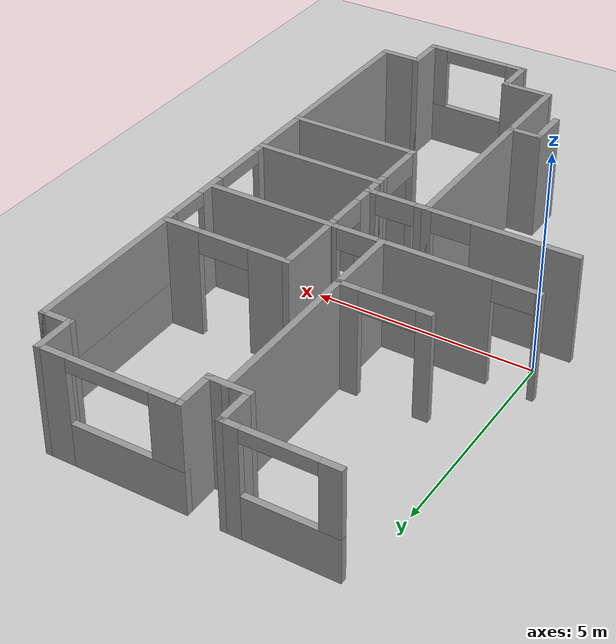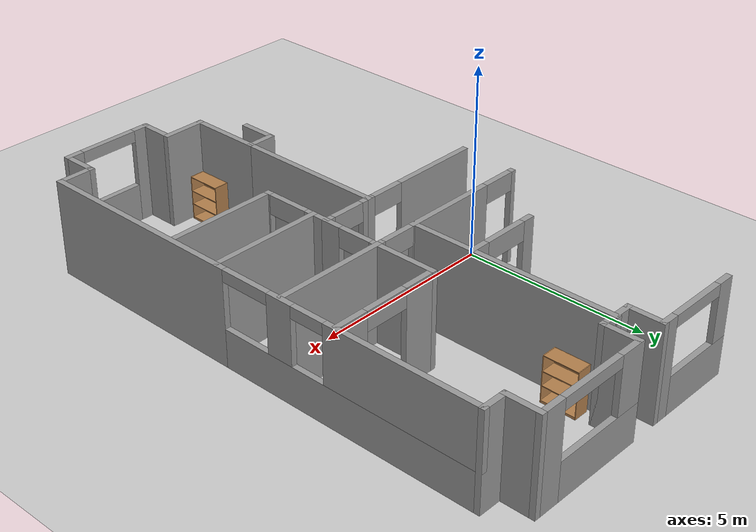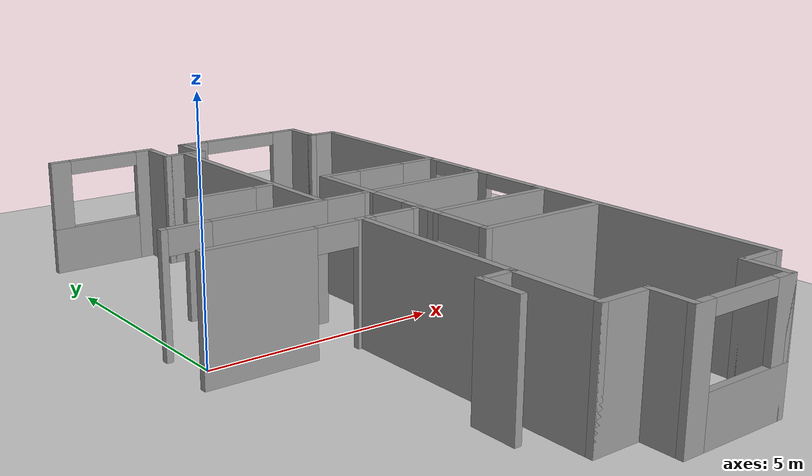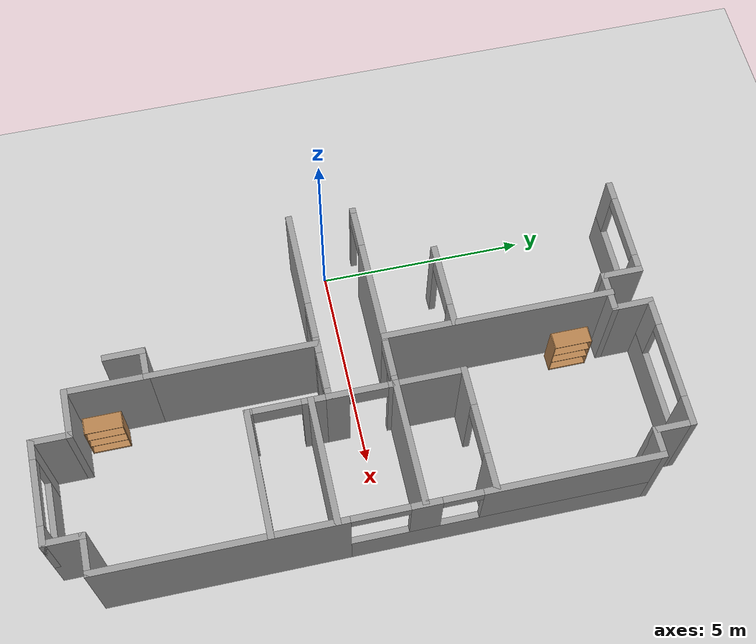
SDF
<sdf version="1.7">
 <world name="default">
  <model name="ground_plane">
   <static>1</static>
   <link name="link">
    <collision name="collision">
     <geometry><plane><normal>0 0 1</normal><size>100 100</size></plane></geometry>
     <surface>
      <contact><collide_bitmask>65535</collide_bitmask></contact>
      <friction><ode><mu>100</mu><mu2>50</mu2></ode></friction>
     </surface>
    </collision>
    <visual name="visual">
     <cast_shadows>0</cast_shadows>
     <geometry><plane><normal>0 0 1</normal><size>100 100</size></plane></geometry>
     <material>
      <script><uri>file://media/materials/scripts/gazebo.material</uri><name>Gazebo/Grey</name></script>
     </material>
    </visual>
   </link>
  </model>
  <model name="house_0818_yt160_1">
   <pose>0.015299 -0.157746 0 0 -0 0</pose>
   <link name="Wall_10">
    <collision name="Wall_10_Collision">
     <geometry><box><size>1.20003 0.15 2.5</size></box></geometry>
     <pose>0 0 1.25 0 -0 0</pose>
    </collision>
    <visual name="Wall_10_Visual">
     <pose>0 0 1.25 0 -0 0</pose>
     <geometry><box><size>1.20003 0.15 2.5</size></box></geometry>
     <material>
      <script><uri>file://media/materials/scripts/gazebo.material</uri><name>Gazebo/Grey</name></script>
      <ambient>1 1 1 1</ambient>
     </material>
     <meta><layer>0</layer></meta>
    </visual>
    <pose>3.42499 -6.29979 0 0 -0 0</pose>
   </link>
   <link name="Wall_11">
    <collision name="Wall_11_Collision">
     <geometry><box><size>1 0.15 2.5</size></box></geometry>
     <pose>0 0 1.25 0 -0 0</pose>
    </collision>
    <visual name="Wall_11_Visual">
     <pose>0 0 1.25 0 -0 0</pose>
     <geometry><box><size>1 0.15 2.5</size></box></geometry>
     <material>
      <script><uri>file://media/materials/scripts/gazebo.material</uri><name>Gazebo/Grey</name></script>
      <ambient>1 1 1 1</ambient>
     </material>
     <meta><layer>0</layer></meta>
    </visual>
    <pose>3.95 -6.7249 0 0 -0 -1.57076</pose>
   </link>
   <link name="Wall_12">
    <pose>5.12501 -7.15 0 0 -0 0</pose>
    <visual name="Wall_12_Visual_0">
     <pose>-1.00927 0 1.25 0 -0 0</pose>
     <geometry><box><size>0.481456 0.15 2.5</size></box></geometry>
     <material>
      <script><uri>file://media/materials/scripts/gazebo.material</uri><name>Gazebo/Grey</name></script>
      <ambient>1 1 1 1</ambient>
     </material>
     <meta><layer>0</layer></meta>
    </visual>
    <collision name="Wall_12_Collision_0">
     <geometry><box><size>0.481456 0.15 2.5</size></box></geometry>
     <pose>-1.00927 0 1.25 0 -0 0</pose>
    </collision>
    <visual name="Wall_12_Visual_1">
     <pose>0.240728 0 0.5 0 -0 0</pose>
     <geometry><box><size>2.01854 0.15 1</size></box></geometry>
     <material>
      <script><uri>file://media/materials/scripts/gazebo.material</uri><name>Gazebo/Grey</name></script>
      <ambient>1 1 1 1</ambient>
     </material>
     <meta><layer>0</layer></meta>
    </visual>
    <collision name="Wall_12_Collision_1">
     <geometry><box><size>2.01854 0.15 1</size></box></geometry>
     <pose>0.240728 0 0.5 0 -0 0</pose>
    </collision>
    <visual name="Wall_12_Visual_2">
     <pose>1.01273 0 1.75 0 -0 0</pose>
     <geometry><box><size>0.474544 0.15 1.5</size></box></geometry>
     <material>
      <script><uri>file://media/materials/scripts/gazebo.material</uri><name>Gazebo/Grey</name></script>
      <ambient>1 1 1 1</ambient>
     </material>
     <meta><layer>0</layer></meta>
    </visual>
    <collision name="Wall_12_Collision_2">
     <geometry><box><size>0.474544 0.15 1.5</size></box></geometry>
     <pose>1.01273 0 1.75 0 -0 0</pose>
    </collision>
    <visual name="Wall_12_Visual_3">
     <pose>0.003456 0 2.35 0 -0 0</pose>
     <geometry><box><size>1.544 0.15 0.3</size></box></geometry>
     <material>
      <script><uri>file://media/materials/scripts/gazebo.material</uri><name>Gazebo/Grey</name></script>
      <ambient>1 1 1 1</ambient>
     </material>
     <meta><layer>0</layer></meta>
    </visual>
    <collision name="Wall_12_Collision_3">
     <geometry><box><size>1.544 0.15 0.3</size></box></geometry>
     <pose>0.003456 0 2.35 0 -0 0</pose>
    </collision>
   </link>
   <link name="Wall_13">
    <collision name="Wall_13_Collision">
     <geometry><box><size>1 0.15 2.5</size></box></geometry>
     <pose>0 0 1.25 0 -0 0</pose>
    </collision>
    <visual name="Wall_13_Visual">
     <pose>0 0 1.25 0 -0 0</pose>
     <geometry><box><size>1 0.15 2.5</size></box></geometry>
     <material>
      <script><uri>file://media/materials/scripts/gazebo.material</uri><name>Gazebo/Grey</name></script>
      <ambient>1 1 1 1</ambient>
     </material>
     <meta><layer>0</layer></meta>
    </visual>
    <pose>6.30001 -6.725 0 0 -0 1.5708</pose>
   </link>
   <link name="Wall_16">
    <collision name="Wall_16_Collision">
     <geometry><box><size>1 0.15 2.5</size></box></geometry>
     <pose>0 0 1.25 0 -0 0</pose>
    </collision>
    <visual name="Wall_16_Visual">
     <pose>0 0 1.25 0 -0 0</pose>
     <geometry><box><size>1 0.15 2.5</size></box></geometry>
     <material>
      <script><uri>file://media/materials/scripts/gazebo.material</uri><name>Gazebo/Grey</name></script>
      <ambient>1 1 1 1</ambient>
     </material>
     <meta><layer>0</layer></meta>
    </visual>
    <pose>6.72501 -6.3 0 0 -0 0</pose>
   </link>
   <link name="Wall_17">
    <pose>7.15001 -0 0 0 -0 1.5708</pose>
    <visual name="Wall_17_Visual_0">
     <pose>-3.53052 0 1.25 0 -0 0</pose>
     <geometry><box><size>5.68897 0.15 2.5</size></box></geometry>
     <material>
      <script><uri>file://media/materials/scripts/gazebo.material</uri><name>Gazebo/Grey</name></script>
      <ambient>1 1 1 1</ambient>
     </material>
     <meta><layer>0</layer></meta>
    </visual>
    <collision name="Wall_17_Collision_0">
     <geometry><box><size>5.68897 0.15 2.5</size></box></geometry>
     <pose>-3.53052 0 1.25 0 -0 0</pose>
    </collision>
    <visual name="Wall_17_Visual_1">
     <pose>2.84448 0 0.5 0 -0 0</pose>
     <geometry><box><size>7.06103 0.15 1</size></box></geometry>
     <material>
      <script><uri>file://media/materials/scripts/gazebo.material</uri><name>Gazebo/Grey</name></script>
      <ambient>1 1 1 1</ambient>
     </material>
     <meta><layer>0</layer></meta>
    </visual>
    <collision name="Wall_17_Collision_1">
     <geometry><box><size>7.06103 0.15 1</size></box></geometry>
     <pose>2.84448 0 0.5 0 -0 0</pose>
    </collision>
    <visual name="Wall_17_Visual_2">
     <pose>0.990952 0 1.75 0 -0 0</pose>
     <geometry><box><size>0.703966 0.15 1.5</size></box></geometry>
     <material>
      <script><uri>file://media/materials/scripts/gazebo.material</uri><name>Gazebo/Grey</name></script>
      <ambient>1 1 1 1</ambient>
     </material>
     <meta><layer>0</layer></meta>
    </visual>
    <collision name="Wall_17_Collision_2">
     <geometry><box><size>0.703966 0.15 1.5</size></box></geometry>
     <pose>0.990952 0 1.75 0 -0 0</pose>
    </collision>
    <visual name="Wall_17_Visual_3">
     <pose>4.31147 0 1.75 0 -0 0</pose>
     <geometry><box><size>4.12706 0.15 1.5</size></box></geometry>
     <material>
      <script><uri>file://media/materials/scripts/gazebo.material</uri><name>Gazebo/Grey</name></script>
      <ambient>1 1 1 1</ambient>
     </material>
     <meta><layer>0</layer></meta>
    </visual>
    <collision name="Wall_17_Collision_3">
     <geometry><box><size>4.12706 0.15 1.5</size></box></geometry>
     <pose>4.31147 0 1.75 0 -0 0</pose>
    </collision>
    <visual name="Wall_17_Visual_4">
     <pose>-0.023532 0 2.35 0 -0 0</pose>
     <geometry><box><size>1.325 0.15 0.3</size></box></geometry>
     <material>
      <script><uri>file://media/materials/scripts/gazebo.material</uri><name>Gazebo/Grey</name></script>
      <ambient>1 1 1 1</ambient>
     </material>
     <meta><layer>0</layer></meta>
    </visual>
    <collision name="Wall_17_Collision_4">
     <geometry><box><size>1.325 0.15 0.3</size></box></geometry>
     <pose>-0.023532 0 2.35 0 -0 0</pose>
    </collision>
    <visual name="Wall_17_Visual_5">
     <pose>1.79543 0 2.35 0 -0 0</pose>
     <geometry><box><size>0.905 0.15 0.3</size></box></geometry>
     <material>
      <script><uri>file://media/materials/scripts/gazebo.material</uri><name>Gazebo/Grey</name></script>
      <ambient>1 1 1 1</ambient>
     </material>
     <meta><layer>0</layer></meta>
    </visual>
    <collision name="Wall_17_Collision_5">
     <geometry><box><size>0.905 0.15 0.3</size></box></geometry>
     <pose>1.79543 0 2.35 0 -0 0</pose>
    </collision>
   </link>
   <link name="Wall_18">
    <collision name="Wall_18_Collision">
     <geometry><box><size>0.75 0.15 2.5</size></box></geometry>
     <pose>0 0 1.25 0 -0 0</pose>
    </collision>
    <visual name="Wall_18_Visual">
     <pose>0 0 1.25 0 -0 0</pose>
     <geometry><box><size>0.75 0.15 2.5</size></box></geometry>
     <material>
      <script><uri>file://media/materials/scripts/gazebo.material</uri><name>Gazebo/Grey</name></script>
      <ambient>1 1 1 1</ambient>
     </material>
     <meta><layer>0</layer></meta>
    </visual>
    <pose>6.85001 6.3 0 0 -0 3.14159</pose>
   </link>
   <link name="Wall_20">
    <collision name="Wall_20_Collision">
     <geometry><box><size>1 0.15 2.5</size></box></geometry>
     <pose>0 0 1.25 0 -0 0</pose>
    </collision>
    <visual name="Wall_20_Visual">
     <pose>0 0 1.25 0 -0 0</pose>
     <geometry><box><size>1 0.15 2.5</size></box></geometry>
     <material>
      <script><uri>file://media/materials/scripts/gazebo.material</uri><name>Gazebo/Grey</name></script>
      <ambient>1 1 1 1</ambient>
     </material>
     <meta><layer>0</layer></meta>
    </visual>
    <pose>6.55001 6.725 0 0 -0 1.5708</pose>
   </link>
   <link name="Wall_21">
    <pose>5.00001 7.15 0 0 -0 3.14159</pose>
    <visual name="Wall_21_Visual_0">
     <pose>-1.26954 0 1.25 0 -0 0</pose>
     <geometry><box><size>0.710929 0.15 2.5</size></box></geometry>
     <material>
      <script><uri>file://media/materials/scripts/gazebo.material</uri><name>Gazebo/Grey</name></script>
      <ambient>1 1 1 1</ambient>
     </material>
     <meta><layer>0</layer></meta>
    </visual>
    <collision name="Wall_21_Collision_0">
     <geometry><box><size>0.710929 0.15 2.5</size></box></geometry>
     <pose>-1.26954 0 1.25 0 -0 0</pose>
    </collision>
    <visual name="Wall_21_Visual_1">
     <pose>0.355464 0 0.5 0 -0 0</pose>
     <geometry><box><size>2.53907 0.15 1</size></box></geometry>
     <material>
      <script><uri>file://media/materials/scripts/gazebo.material</uri><name>Gazebo/Grey</name></script>
      <ambient>1 1 1 1</ambient>
     </material>
     <meta><layer>0</layer></meta>
    </visual>
    <collision name="Wall_21_Collision_1">
     <geometry><box><size>2.53907 0.15 1</size></box></geometry>
     <pose>0.355464 0 0.5 0 -0 0</pose>
    </collision>
    <visual name="Wall_21_Visual_2">
     <pose>1.27146 0 1.75 0 -0 0</pose>
     <geometry><box><size>0.707071 0.15 1.5</size></box></geometry>
     <material>
      <script><uri>file://media/materials/scripts/gazebo.material</uri><name>Gazebo/Grey</name></script>
      <ambient>1 1 1 1</ambient>
     </material>
     <meta><layer>0</layer></meta>
    </visual>
    <collision name="Wall_21_Collision_2">
     <geometry><box><size>0.707071 0.15 1.5</size></box></geometry>
     <pose>1.27146 0 1.75 0 -0 0</pose>
    </collision>
    <visual name="Wall_21_Visual_3">
     <pose>0.001929 0 2.35 0 -0 0</pose>
     <geometry><box><size>1.832 0.15 0.3</size></box></geometry>
     <material>
      <script><uri>file://media/materials/scripts/gazebo.material</uri><name>Gazebo/Grey</name></script>
      <ambient>1 1 1 1</ambient>
     </material>
     <meta><layer>0</layer></meta>
    </visual>
    <collision name="Wall_21_Collision_3">
     <geometry><box><size>1.832 0.15 0.3</size></box></geometry>
     <pose>0.001929 0 2.35 0 -0 0</pose>
    </collision>
   </link>
   <link name="Wall_22">
    <collision name="Wall_22_Collision">
     <geometry><box><size>1 0.15 2.5</size></box></geometry>
     <pose>0 0 1.25 0 -0 0</pose>
    </collision>
    <visual name="Wall_22_Visual">
     <pose>0 0 1.25 0 -0 0</pose>
     <geometry><box><size>1 0.15 2.5</size></box></geometry>
     <material>
      <script><uri>file://media/materials/scripts/gazebo.material</uri><name>Gazebo/Grey</name></script>
      <ambient>1 1 1 1</ambient>
     </material>
     <meta><layer>0</layer></meta>
    </visual>
    <pose>3.45001 6.725 0 0 -0 -1.5708</pose>
   </link>
   <link name="Wall_23">
    <collision name="Wall_23_Collision">
     <geometry><box><size>1 0.15 2.5</size></box></geometry>
     <pose>0 0 1.25 0 -0 0</pose>
    </collision>
    <visual name="Wall_23_Visual">
     <pose>0 0 1.25 0 -0 0</pose>
     <geometry><box><size>1 0.15 2.5</size></box></geometry>
     <material>
      <script><uri>file://media/materials/scripts/gazebo.material</uri><name>Gazebo/Grey</name></script>
      <ambient>1 1 1 1</ambient>
     </material>
     <meta><layer>0</layer></meta>
    </visual>
    <pose>3.02501 6.3 0 0 -0 3.14159</pose>
   </link>
   <link name="Wall_24">
    <collision name="Wall_24_Collision">
     <geometry><box><size>1 0.15 2.5</size></box></geometry>
     <pose>0 0 1.25 0 -0 0</pose>
    </collision>
    <visual name="Wall_24_Visual">
     <pose>0 0 1.25 0 -0 0</pose>
     <geometry><box><size>1 0.15 2.5</size></box></geometry>
     <material>
      <script><uri>file://media/materials/scripts/gazebo.material</uri><name>Gazebo/Grey</name></script>
      <ambient>1 1 1 1</ambient>
     </material>
     <meta><layer>0</layer></meta>
    </visual>
    <pose>2.60001 6.725 0 0 -0 1.5708</pose>
   </link>
   <link name="Wall_25">
    <pose>1.42501 7.15 0 0 -0 3.14159</pose>
    <visual name="Wall_25_Visual_0">
     <pose>-1.01884 0 1.25 0 -0 0</pose>
     <geometry><box><size>0.462315 0.15 2.5</size></box></geometry>
     <material>
      <script><uri>file://media/materials/scripts/gazebo.material</uri><name>Gazebo/Grey</name></script>
      <ambient>1 1 1 1</ambient>
     </material>
     <meta><layer>0</layer></meta>
    </visual>
    <collision name="Wall_25_Collision_0">
     <geometry><box><size>0.462315 0.15 2.5</size></box></geometry>
     <pose>-1.01884 0 1.25 0 -0 0</pose>
    </collision>
    <visual name="Wall_25_Visual_1">
     <pose>0.231157 0 0.5 0 -0 0</pose>
     <geometry><box><size>2.03769 0.15 1</size></box></geometry>
     <material>
      <script><uri>file://media/materials/scripts/gazebo.material</uri><name>Gazebo/Grey</name></script>
      <ambient>1 1 1 1</ambient>
     </material>
     <meta><layer>0</layer></meta>
    </visual>
    <collision name="Wall_25_Collision_1">
     <geometry><box><size>2.03769 0.15 1</size></box></geometry>
     <pose>0.231157 0 0.5 0 -0 0</pose>
    </collision>
    <visual name="Wall_25_Visual_2">
     <pose>1.0213 0 1.75 0 -0 0</pose>
     <geometry><box><size>0.45741 0.15 1.5</size></box></geometry>
     <material>
      <script><uri>file://media/materials/scripts/gazebo.material</uri><name>Gazebo/Grey</name></script>
      <ambient>1 1 1 1</ambient>
     </material>
     <meta><layer>0</layer></meta>
    </visual>
    <collision name="Wall_25_Collision_2">
     <geometry><box><size>0.45741 0.15 1.5</size></box></geometry>
     <pose>1.0213 0 1.75 0 -0 0</pose>
    </collision>
    <visual name="Wall_25_Visual_3">
     <pose>0.002452 0 2.35 0 -0 0</pose>
     <geometry><box><size>1.58028 0.15 0.3</size></box></geometry>
     <material>
      <script><uri>file://media/materials/scripts/gazebo.material</uri><name>Gazebo/Grey</name></script>
      <ambient>1 1 1 1</ambient>
     </material>
     <meta><layer>0</layer></meta>
    </visual>
    <collision name="Wall_25_Collision_3">
     <geometry><box><size>1.58028 0.15 0.3</size></box></geometry>
     <pose>0.002452 0 2.35 0 -0 0</pose>
    </collision>
   </link>
   <link name="Wall_41">
    <pose>1.22499 -0.559795 0 0 -0 0</pose>
    <visual name="Wall_41_Visual_0">
     <pose>-0.561728 0 1.25 0 -0 0</pose>
     <geometry><box><size>2.3766 0.15 2.5</size></box></geometry>
     <material>
      <script><uri>file://media/materials/scripts/gazebo.material</uri><name>Gazebo/Grey</name></script>
      <ambient>1 1 1 1</ambient>
     </material>
     <meta><layer>0</layer></meta>
    </visual>
    <collision name="Wall_41_Collision_0">
     <geometry><box><size>2.3766 0.15 2.5</size></box></geometry>
     <pose>-0.561728 0 1.25 0 -0 0</pose>
    </collision>
    <visual name="Wall_41_Visual_1">
     <pose>1.6383 0 1.25 0 -0 0</pose>
     <geometry><box><size>0.223456 0.15 2.5</size></box></geometry>
     <material>
      <script><uri>file://media/materials/scripts/gazebo.material</uri><name>Gazebo/Grey</name></script>
      <ambient>1 1 1 1</ambient>
     </material>
     <meta><layer>0</layer></meta>
    </visual>
    <collision name="Wall_41_Collision_1">
     <geometry><box><size>0.223456 0.15 2.5</size></box></geometry>
     <pose>1.6383 0 1.25 0 -0 0</pose>
    </collision>
    <visual name="Wall_41_Visual_2">
     <pose>1.07657 0 2.25 0 -0 0</pose>
     <geometry><box><size>0.9 0.15 0.5</size></box></geometry>
     <material>
      <script><uri>file://media/materials/scripts/gazebo.material</uri><name>Gazebo/Grey</name></script>
      <ambient>1 1 1 1</ambient>
     </material>
     <meta><layer>0</layer></meta>
    </visual>
    <collision name="Wall_41_Collision_2">
     <geometry><box><size>0.9 0.15 0.5</size></box></geometry>
     <pose>1.07657 0 2.25 0 -0 0</pose>
    </collision>
   </link>
   <link name="Wall_42">
    <collision name="Wall_42_Collision">
     <geometry><box><size>4.04 0.15 2.5</size></box></geometry>
     <pose>0 0 1.25 0 -0 0</pose>
    </collision>
    <visual name="Wall_42_Visual">
     <pose>0 0 1.25 0 -0 0</pose>
     <geometry><box><size>4.04 0.15 2.5</size></box></geometry>
     <material>
      <script><uri>file://media/materials/scripts/gazebo.material</uri><name>Gazebo/Grey</name></script>
      <ambient>1 1 1 1</ambient>
     </material>
     <meta><layer>0</layer></meta>
    </visual>
    <pose>2.89999 -2.5048 0 0 -0 -1.5708</pose>
   </link>
   <link name="Wall_44">
    <pose>3.57499 -0.559795 0 0 -0 0</pose>
    <visual name="Wall_44_Visual_0">
     <pose>-0.589056 0 1.25 0 -0 0</pose>
     <geometry><box><size>0.321888 0.15 2.5</size></box></geometry>
     <material>
      <script><uri>file://media/materials/scripts/gazebo.material</uri><name>Gazebo/Grey</name></script>
      <ambient>1 1 1 1</ambient>
     </material>
     <meta><layer>0</layer></meta>
    </visual>
    <collision name="Wall_44_Collision_0">
     <geometry><box><size>0.321888 0.15 2.5</size></box></geometry>
     <pose>-0.589056 0 1.25 0 -0 0</pose>
    </collision>
    <visual name="Wall_44_Visual_1">
     <pose>0.610944 0 1.25 0 -0 0</pose>
     <geometry><box><size>0.278112 0.15 2.5</size></box></geometry>
     <material>
      <script><uri>file://media/materials/scripts/gazebo.material</uri><name>Gazebo/Grey</name></script>
      <ambient>1 1 1 1</ambient>
     </material>
     <meta><layer>0</layer></meta>
    </visual>
    <collision name="Wall_44_Collision_1">
     <geometry><box><size>0.278112 0.15 2.5</size></box></geometry>
     <pose>0.610944 0 1.25 0 -0 0</pose>
    </collision>
    <visual name="Wall_44_Visual_2">
     <pose>0.021888 0 2.25 0 -0 0</pose>
     <geometry><box><size>0.9 0.15 0.5</size></box></geometry>
     <material>
      <script><uri>file://media/materials/scripts/gazebo.material</uri><name>Gazebo/Grey</name></script>
      <ambient>1 1 1 1</ambient>
     </material>
     <meta><layer>0</layer></meta>
    </visual>
    <collision name="Wall_44_Collision_2">
     <geometry><box><size>0.9 0.15 0.5</size></box></geometry>
     <pose>0.021888 0 2.25 0 -0 0</pose>
    </collision>
   </link>
   <link name="Wall_45">
    <pose>4.24999 -1.4848 0 0 -0 -1.5708</pose>
    <visual name="Wall_45_Visual_0">
     <pose>-0.650719 0 1.25 0 -0 0</pose>
     <geometry><box><size>0.698562 0.15 2.5</size></box></geometry>
     <material>
      <script><uri>file://media/materials/scripts/gazebo.material</uri><name>Gazebo/Grey</name></script>
      <ambient>1 1 1 1</ambient>
     </material>
     <meta><layer>0</layer></meta>
    </visual>
    <collision name="Wall_45_Collision_0">
     <geometry><box><size>0.698562 0.15 2.5</size></box></geometry>
     <pose>-0.650719 0 1.25 0 -0 0</pose>
    </collision>
    <visual name="Wall_45_Visual_1">
     <pose>0.903369 0 1.25 0 -0 0</pose>
     <geometry><box><size>0.193263 0.15 2.5</size></box></geometry>
     <material>
      <script><uri>file://media/materials/scripts/gazebo.material</uri><name>Gazebo/Grey</name></script>
      <ambient>1 1 1 1</ambient>
     </material>
     <meta><layer>0</layer></meta>
    </visual>
    <collision name="Wall_45_Collision_1">
     <geometry><box><size>0.193263 0.15 2.5</size></box></geometry>
     <pose>0.903369 0 1.25 0 -0 0</pose>
    </collision>
    <visual name="Wall_45_Visual_2">
     <pose>0.252649 0 2.25 0 -0 0</pose>
     <geometry><box><size>1.10817 0.15 0.5</size></box></geometry>
     <material>
      <script><uri>file://media/materials/scripts/gazebo.material</uri><name>Gazebo/Grey</name></script>
      <ambient>1 1 1 1</ambient>
     </material>
     <meta><layer>0</layer></meta>
    </visual>
    <collision name="Wall_45_Collision_2">
     <geometry><box><size>1.10817 0.15 0.5</size></box></geometry>
     <pose>0.252649 0 2.25 0 -0 0</pose>
    </collision>
   </link>
   <link name="Wall_50">
    <pose>4.24999 0.990205 0 0 -0 1.5708</pose>
    <visual name="Wall_50_Visual_0">
     <pose>-1.36045 0 1.25 0 -0 0</pose>
     <geometry><box><size>0.529105 0.15 2.5</size></box></geometry>
     <material>
      <script><uri>file://media/materials/scripts/gazebo.material</uri><name>Gazebo/Grey</name></script>
      <ambient>1 1 1 1</ambient>
     </material>
     <meta><layer>0</layer></meta>
    </visual>
    <collision name="Wall_50_Collision_0">
     <geometry><box><size>0.529105 0.15 2.5</size></box></geometry>
     <pose>-1.36045 0 1.25 0 -0 0</pose>
    </collision>
    <visual name="Wall_50_Visual_1">
     <pose>0.714553 0 1.25 0 -0 0</pose>
     <geometry><box><size>1.82089 0.15 2.5</size></box></geometry>
     <material>
      <script><uri>file://media/materials/scripts/gazebo.material</uri><name>Gazebo/Grey</name></script>
      <ambient>1 1 1 1</ambient>
     </material>
     <meta><layer>0</layer></meta>
    </visual>
    <collision name="Wall_50_Collision_1">
     <geometry><box><size>1.82089 0.15 2.5</size></box></geometry>
     <pose>0.714553 0 1.25 0 -0 0</pose>
    </collision>
    <visual name="Wall_50_Visual_2">
     <pose>-0.645895 0 2.25 0 -0 0</pose>
     <geometry><box><size>0.9 0.15 0.5</size></box></geometry>
     <material>
      <script><uri>file://media/materials/scripts/gazebo.material</uri><name>Gazebo/Grey</name></script>
      <ambient>1 1 1 1</ambient>
     </material>
     <meta><layer>0</layer></meta>
    </visual>
    <collision name="Wall_50_Collision_2">
     <geometry><box><size>0.9 0.15 0.5</size></box></geometry>
     <pose>-0.645895 0 2.25 0 -0 0</pose>
    </collision>
   </link>
   <link name="Wall_51">
    <pose>5.67499 2.5402 0 0 -0 0</pose>
    <visual name="Wall_51_Visual_0">
     <pose>-1.02522 0 1.25 0 -0 0</pose>
     <geometry><box><size>0.949555 0.15 2.5</size></box></geometry>
     <material>
      <script><uri>file://media/materials/scripts/gazebo.material</uri><name>Gazebo/Grey</name></script>
      <ambient>1 1 1 1</ambient>
     </material>
     <meta><layer>0</layer></meta>
    </visual>
    <collision name="Wall_51_Collision_0">
     <geometry><box><size>0.949555 0.15 2.5</size></box></geometry>
     <pose>-1.02522 0 1.25 0 -0 0</pose>
    </collision>
    <visual name="Wall_51_Visual_1">
     <pose>1.06356 0 1.25 0 -0 0</pose>
     <geometry><box><size>0.872878 0.15 2.5</size></box></geometry>
     <material>
      <script><uri>file://media/materials/scripts/gazebo.material</uri><name>Gazebo/Grey</name></script>
      <ambient>1 1 1 1</ambient>
     </material>
     <meta><layer>0</layer></meta>
    </visual>
    <collision name="Wall_51_Collision_1">
     <geometry><box><size>0.872878 0.15 2.5</size></box></geometry>
     <pose>1.06356 0 1.25 0 -0 0</pose>
    </collision>
    <visual name="Wall_51_Visual_2">
     <pose>0.038338 0 2.25 0 -0 0</pose>
     <geometry><box><size>1.17757 0.15 0.5</size></box></geometry>
     <material>
      <script><uri>file://media/materials/scripts/gazebo.material</uri><name>Gazebo/Grey</name></script>
      <ambient>1 1 1 1</ambient>
     </material>
     <meta><layer>0</layer></meta>
    </visual>
    <collision name="Wall_51_Collision_2">
     <geometry><box><size>1.17757 0.15 0.5</size></box></geometry>
     <pose>0.038338 0 2.25 0 -0 0</pose>
    </collision>
   </link>
   <link name="Wall_53">
    <collision name="Wall_53_Collision">
     <geometry><box><size>3.05 0.15 2.5</size></box></geometry>
     <pose>0 0 1.25 0 -0 0</pose>
    </collision>
    <visual name="Wall_53_Visual">
     <pose>0 0 1.25 0 -0 0</pose>
     <geometry><box><size>3.05 0.15 2.5</size></box></geometry>
     <material>
      <script><uri>file://media/materials/scripts/gazebo.material</uri><name>Gazebo/Grey</name></script>
      <ambient>1 1 1 1</ambient>
     </material>
     <meta><layer>0</layer></meta>
    </visual>
    <pose>5.69999 -2.40979 0 0 -0 0</pose>
   </link>
   <link name="Wall_55">
    <pose>1.94113 0.969142 0 0 -0 3.14156</pose>
    <visual name="Wall_55_Visual_0">
     <pose>-2.24539 0 1.25 0 -0 0</pose>
     <geometry><box><size>0.259229 0.15 2.5</size></box></geometry>
     <material>
      <script><uri>file://media/materials/scripts/gazebo.material</uri><name>Gazebo/Grey</name></script>
      <ambient>1 1 1 1</ambient>
     </material>
     <meta><layer>0</layer></meta>
    </visual>
    <collision name="Wall_55_Collision_0">
     <geometry><box><size>0.259229 0.15 2.5</size></box></geometry>
     <pose>-2.24539 0 1.25 0 -0 0</pose>
    </collision>
    <visual name="Wall_55_Visual_1">
     <pose>0.059708 0 1.25 0 -0 0</pose>
     <geometry><box><size>2.55096 0.15 2.5</size></box></geometry>
     <material>
      <script><uri>file://media/materials/scripts/gazebo.material</uri><name>Gazebo/Grey</name></script>
      <ambient>1 1 1 1</ambient>
     </material>
     <meta><layer>0</layer></meta>
    </visual>
    <collision name="Wall_55_Collision_1">
     <geometry><box><size>2.55096 0.15 2.5</size></box></geometry>
     <pose>0.059708 0 1.25 0 -0 0</pose>
    </collision>
    <visual name="Wall_55_Visual_2">
     <pose>2.30509 0 1.25 0 -0 0</pose>
     <geometry><box><size>0.139813 0.15 2.5</size></box></geometry>
     <material>
      <script><uri>file://media/materials/scripts/gazebo.material</uri><name>Gazebo/Grey</name></script>
      <ambient>1 1 1 1</ambient>
     </material>
     <meta><layer>0</layer></meta>
    </visual>
    <collision name="Wall_55_Collision_2">
     <geometry><box><size>0.139813 0.15 2.5</size></box></geometry>
     <pose>2.30509 0 1.25 0 -0 0</pose>
    </collision>
    <visual name="Wall_55_Visual_3">
     <pose>-1.66577 0 2.25 0 -0 0</pose>
     <geometry><box><size>0.9 0.15 0.5</size></box></geometry>
     <material>
      <script><uri>file://media/materials/scripts/gazebo.material</uri><name>Gazebo/Grey</name></script>
      <ambient>1 1 1 1</ambient>
     </material>
     <meta><layer>0</layer></meta>
    </visual>
    <collision name="Wall_55_Collision_3">
     <geometry><box><size>0.9 0.15 0.5</size></box></geometry>
     <pose>-1.66577 0 2.25 0 -0 0</pose>
    </collision>
    <visual name="Wall_55_Visual_4">
     <pose>1.78519 0 2.25 0 -0 0</pose>
     <geometry><box><size>0.9 0.15 0.5</size></box></geometry>
     <material>
      <script><uri>file://media/materials/scripts/gazebo.material</uri><name>Gazebo/Grey</name></script>
      <ambient>1 1 1 1</ambient>
     </material>
     <meta><layer>0</layer></meta>
    </visual>
    <collision name="Wall_55_Collision_4">
     <geometry><box><size>0.9 0.15 0.5</size></box></geometry>
     <pose>1.78519 0 2.25 0 -0 0</pose>
    </collision>
   </link>
   <link name="Wall_59">
    <collision name="Wall_59_Collision">
     <geometry><box><size>5.5 0.15 2.5</size></box></geometry>
     <pose>0 0 1.25 0 -0 0</pose>
    </collision>
    <visual name="Wall_59_Visual">
     <pose>0 0 1.25 0 -0 0</pose>
     <geometry><box><size>5.5 0.15 2.5</size></box></geometry>
     <material>
      <script><uri>file://media/materials/scripts/gazebo.material</uri><name>Gazebo/Grey</name></script>
      <ambient>1 1 1 1</ambient>
     </material>
     <meta><layer>0</layer></meta>
    </visual>
    <pose>3.046 3.65384 0 0 -0 1.5708</pose>
   </link>
   <link name="Wall_62">
    <pose>2.06049 2.61921 0 0 -0 0</pose>
    <visual name="Wall_62_Visual_0">
     <pose>-0.891023 0 1.25 0 -0 0</pose>
     <geometry><box><size>0.338955 0.15 2.5</size></box></geometry>
     <material>
      <script><uri>file://media/materials/scripts/gazebo.material</uri><name>Gazebo/Grey</name></script>
      <ambient>1 1 1 1</ambient>
     </material>
     <meta><layer>0</layer></meta>
    </visual>
    <collision name="Wall_62_Collision_0">
     <geometry><box><size>0.338955 0.15 2.5</size></box></geometry>
     <pose>-0.891023 0 1.25 0 -0 0</pose>
    </collision>
    <visual name="Wall_62_Visual_1">
     <pose>0.786227 0 1.25 0 -0 0</pose>
     <geometry><box><size>0.548545 0.15 2.5</size></box></geometry>
     <material>
      <script><uri>file://media/materials/scripts/gazebo.material</uri><name>Gazebo/Grey</name></script>
      <ambient>1 1 1 1</ambient>
     </material>
     <meta><layer>0</layer></meta>
    </visual>
    <collision name="Wall_62_Collision_1">
     <geometry><box><size>0.548545 0.15 2.5</size></box></geometry>
     <pose>0.786227 0 1.25 0 -0 0</pose>
    </collision>
    <visual name="Wall_62_Visual_2">
     <pose>-0.104795 0 2.25 0 -0 0</pose>
     <geometry><box><size>1.2335 0.15 0.5</size></box></geometry>
     <material>
      <script><uri>file://media/materials/scripts/gazebo.material</uri><name>Gazebo/Grey</name></script>
      <ambient>1 1 1 1</ambient>
     </material>
     <meta><layer>0</layer></meta>
    </visual>
    <collision name="Wall_62_Collision_2">
     <geometry><box><size>1.2335 0.15 0.5</size></box></geometry>
     <pose>-0.104795 0 2.25 0 -0 0</pose>
    </collision>
   </link>
   <link name="Wall_7">
    <collision name="Wall_7_Collision">
     <geometry><box><size>1 0.15 2.5</size></box></geometry>
     <pose>0 0 1.25 0 -0 0</pose>
    </collision>
    <visual name="Wall_7_Visual">
     <pose>0 0 1.25 0 -0 0</pose>
     <geometry><box><size>1 0.15 2.5</size></box></geometry>
     <material>
      <script><uri>file://media/materials/scripts/gazebo.material</uri><name>Gazebo/Grey</name></script>
      <ambient>1 1 1 1</ambient>
     </material>
     <meta><layer>0</layer></meta>
    </visual>
    <pose>2.25 -4.8749 0 0 -0 1.57083</pose>
   </link>
   <link name="Wall_71">
    <collision name="Wall_71_Collision">
     <geometry><box><size>3 0.15 2.5</size></box></geometry>
     <pose>0 0 1.25 0 -0 0</pose>
    </collision>
    <visual name="Wall_71_Visual">
     <pose>0 0 1.25 0 -0 0</pose>
     <geometry><box><size>3 0.15 2.5</size></box></geometry>
     <material>
      <script><uri>file://media/materials/scripts/gazebo.material</uri><name>Gazebo/Grey</name></script>
      <ambient>1 1 1 1</ambient>
     </material>
     <meta><layer>0</layer></meta>
    </visual>
    <pose>5.66627 0.969079 0 0 -0 0</pose>
   </link>
   <link name="Wall_73">
    <collision name="Wall_73_Collision">
     <geometry><box><size>3.054 0.15 2.5</size></box></geometry>
     <pose>0 0 1.25 0 -0 0</pose>
    </collision>
    <visual name="Wall_73_Visual">
     <pose>0 0 1.25 0 -0 0</pose>
     <geometry><box><size>3.054 0.15 2.5</size></box></geometry>
     <material>
      <script><uri>file://media/materials/scripts/gazebo.material</uri><name>Gazebo/Grey</name></script>
      <ambient>1 1 1 1</ambient>
     </material>
     <meta><layer>0</layer></meta>
    </visual>
    <pose>5.69799 -0.964795 0 0 -0 0</pose>
   </link>
   <link name="Wall_8">
    <collision name="Wall_8_Collision">
     <geometry><box><size>0.8 0.15 2.5</size></box></geometry>
     <pose>0 0 1.25 0 -0 0</pose>
    </collision>
    <visual name="Wall_8_Visual">
     <pose>0 0 1.25 0 -0 0</pose>
     <geometry><box><size>0.8 0.15 2.5</size></box></geometry>
     <material>
      <script><uri>file://media/materials/scripts/gazebo.material</uri><name>Gazebo/Grey</name></script>
      <ambient>1 1 1 1</ambient>
     </material>
     <meta><layer>0</layer></meta>
    </visual>
    <pose>2.57499 -4.44979 0 0 -0 0</pose>
   </link>
   <link name="Wall_9">
    <collision name="Wall_9_Collision">
     <geometry><box><size>2 0.15 2.5</size></box></geometry>
     <pose>0 0 1.25 0 -0 0</pose>
    </collision>
    <visual name="Wall_9_Visual">
     <pose>0 0 1.25 0 -0 0</pose>
     <geometry><box><size>2 0.15 2.5</size></box></geometry>
     <material>
      <script><uri>file://media/materials/scripts/gazebo.material</uri><name>Gazebo/Grey</name></script>
      <ambient>1 1 1 1</ambient>
     </material>
     <meta><layer>0</layer></meta>
    </visual>
    <pose>2.89999 -5.37479 0 0 -0 -1.5708</pose>
   </link>
   <static>1</static>
  </model>
  <model name="Bookshelf_clone_0">
   <static>1</static>
   <link name="link">
    <inertial><mass>1</mass></inertial>
    <collision name="back">
     <pose>0 0.005 0.6 0 -0 0</pose>
     <geometry><box><size>0.9 0.01 1.2</size></box></geometry>
    </collision>
    <visual name="visual1">
     <pose>0 0.005 0.6 0 -0 0</pose>
     <geometry><box><size>0.9 0.01 1.2</size></box></geometry>
     <material>
      <diffuse>1 1 1 1</diffuse>
      <script><uri>file://media/materials/scripts/gazebo.material</uri><name>Gazebo/Wood</name></script>
      <pbr>
       <metal>
        <albedo_map>https://fuel.ignitionrobotics.org/1.0/openrobotics/models/bookshelf/3/files/bookshelf_diffuse.jpg</albedo_map>
       </metal>
      </pbr>
     </material>
    </visual>
    <collision name="left_side">
     <pose>0.45 -0.195 0.6 0 -0 0</pose>
     <geometry><box><size>0.02 0.4 1.2</size></box></geometry>
    </collision>
    <visual name="visual2">
     <pose>0.45 -0.195 0.6 0 -0 0</pose>
     <geometry><box><size>0.02 0.4 1.2</size></box></geometry>
     <material>
      <diffuse>1 1 1 1</diffuse>
      <script><uri>file://media/materials/scripts/gazebo.material</uri><name>Gazebo/Wood</name></script>
      <pbr>
       <metal>
        <albedo_map>https://fuel.ignitionrobotics.org/1.0/openrobotics/models/bookshelf/3/files/bookshelf_diffuse.jpg</albedo_map>
       </metal>
      </pbr>
     </material>
    </visual>
    <collision name="right_side">
     <pose>-0.45 -0.195 0.6 0 -0 0</pose>
     <geometry><box><size>0.02 0.4 1.2</size></box></geometry>
    </collision>
    <visual name="visual3">
     <pose>-0.45 -0.195 0.6 0 -0 0</pose>
     <geometry><box><size>0.02 0.4 1.2</size></box></geometry>
     <material>
      <diffuse>1 1 1 1</diffuse>
      <script><uri>file://media/materials/scripts/gazebo.material</uri><name>Gazebo/Wood</name></script>
      <pbr>
       <metal>
        <albedo_map>https://fuel.ignitionrobotics.org/1.0/openrobotics/models/bookshelf/3/files/bookshelf_diffuse.jpg</albedo_map>
       </metal>
      </pbr>
     </material>
    </visual>
    <collision name="bottom">
     <pose>0 -0.195 0.03 0 -0 0</pose>
     <geometry><box><size>0.88 0.4 0.06</size></box></geometry>
    </collision>
    <visual name="visual4">
     <pose>0 -0.195 0.03 0 -0 0</pose>
     <geometry><box><size>0.88 0.4 0.06</size></box></geometry>
     <material>
      <diffuse>1 1 1 1</diffuse>
      <script><uri>file://media/materials/scripts/gazebo.material</uri><name>Gazebo/Wood</name></script>
      <pbr>
       <metal>
        <albedo_map>https://fuel.ignitionrobotics.org/1.0/openrobotics/models/bookshelf/3/files/bookshelf_diffuse.jpg</albedo_map>
       </metal>
      </pbr>
     </material>
    </visual>
    <collision name="top">
     <pose>0 -0.195 1.19 0 -0 0</pose>
     <geometry><box><size>0.88 0.4 0.02</size></box></geometry>
    </collision>
    <visual name="visual5">
     <pose>0 -0.195 1.19 0 -0 0</pose>
     <geometry><box><size>0.88 0.4 0.02</size></box></geometry>
     <material>
      <diffuse>1 1 1 1</diffuse>
      <script><uri>file://media/materials/scripts/gazebo.material</uri><name>Gazebo/Wood</name></script>
      <pbr>
       <metal>
        <albedo_map>https://fuel.ignitionrobotics.org/1.0/openrobotics/models/bookshelf/3/files/bookshelf_diffuse.jpg</albedo_map>
       </metal>
      </pbr>
     </material>
    </visual>
    <collision name="low_shelf">
     <pose>0 -0.195 0.43 0 -0 0</pose>
     <geometry><box><size>0.88 0.4 0.02</size></box></geometry>
    </collision>
    <visual name="visual6">
     <pose>0 -0.195 0.43 0 -0 0</pose>
     <geometry><box><size>0.88 0.4 0.02</size></box></geometry>
     <material>
      <diffuse>1 1 1 1</diffuse>
      <script><uri>file://media/materials/scripts/gazebo.material</uri><name>Gazebo/Wood</name></script>
      <pbr>
       <metal>
        <albedo_map>https://fuel.ignitionrobotics.org/1.0/openrobotics/models/bookshelf/3/files/bookshelf_diffuse.jpg</albedo_map>
       </metal>
      </pbr>
     </material>
    </visual>
    <collision name="high_shelf">
     <pose>0 -0.195 0.8 0 -0 0</pose>
     <geometry><box><size>0.88 0.4 0.02</size></box></geometry>
    </collision>
    <visual name="visual7">
     <pose>0 -0.195 0.8 0 -0 0</pose>
     <geometry><box><size>0.88 0.4 0.02</size></box></geometry>
     <material>
      <diffuse>1 1 1 1</diffuse>
      <script><uri>file://media/materials/scripts/gazebo.material</uri><name>Gazebo/Wood</name></script>
      <pbr>
       <metal>
        <albedo_map>https://fuel.ignitionrobotics.org/1.0/openrobotics/models/bookshelf/3/files/bookshelf_diffuse.jpg</albedo_map>
       </metal>
      </pbr>
     </material>
    </visual>
   </link>
   <pose>3.22047 5.32248 0 0 -0 1.57349</pose>
  </model>
  <model name="Bookshelf_clone_0_clone_clone">
   <static>1</static>
   <link name="link">
    <inertial><mass>1</mass></inertial>
    <collision name="back">
     <pose>0 0.005 0.6 0 -0 0</pose>
     <geometry><box><size>0.9 0.01 1.2</size></box></geometry>
    </collision>
    <visual name="visual1">
     <pose>0 0.005 0.6 0 -0 0</pose>
     <geometry><box><size>0.9 0.01 1.2</size></box></geometry>
     <material>
      <diffuse>1 1 1 1</diffuse>
      <script><uri>file://media/materials/scripts/gazebo.material</uri><name>Gazebo/Wood</name></script>
      <pbr>
       <metal>
        <albedo_map>https://fuel.ignitionrobotics.org/1.0/openrobotics/models/bookshelf/3/files/bookshelf_diffuse.jpg</albedo_map>
       </metal>
      </pbr>
     </material>
    </visual>
    <collision name="left_side">
     <pose>0.45 -0.195 0.6 0 -0 0</pose>
     <geometry><box><size>0.02 0.4 1.2</size></box></geometry>
    </collision>
    <visual name="visual2">
     <pose>0.45 -0.195 0.6 0 -0 0</pose>
     <geometry><box><size>0.02 0.4 1.2</size></box></geometry>
     <material>
      <diffuse>1 1 1 1</diffuse>
      <script><uri>file://media/materials/scripts/gazebo.material</uri><name>Gazebo/Wood</name></script>
      <pbr>
       <metal>
        <albedo_map>https://fuel.ignitionrobotics.org/1.0/openrobotics/models/bookshelf/3/files/bookshelf_diffuse.jpg</albedo_map>
       </metal>
      </pbr>
     </material>
    </visual>
    <collision name="right_side">
     <pose>-0.45 -0.195 0.6 0 -0 0</pose>
     <geometry><box><size>0.02 0.4 1.2</size></box></geometry>
    </collision>
    <visual name="visual3">
     <pose>-0.45 -0.195 0.6 0 -0 0</pose>
     <geometry><box><size>0.02 0.4 1.2</size></box></geometry>
     <material>
      <diffuse>1 1 1 1</diffuse>
      <script><uri>file://media/materials/scripts/gazebo.material</uri><name>Gazebo/Wood</name></script>
      <pbr>
       <metal>
        <albedo_map>https://fuel.ignitionrobotics.org/1.0/openrobotics/models/bookshelf/3/files/bookshelf_diffuse.jpg</albedo_map>
       </metal>
      </pbr>
     </material>
    </visual>
    <collision name="bottom">
     <pose>0 -0.195 0.03 0 -0 0</pose>
     <geometry><box><size>0.88 0.4 0.06</size></box></geometry>
    </collision>
    <visual name="visual4">
     <pose>0 -0.195 0.03 0 -0 0</pose>
     <geometry><box><size>0.88 0.4 0.06</size></box></geometry>
     <material>
      <diffuse>1 1 1 1</diffuse>
      <script><uri>file://media/materials/scripts/gazebo.material</uri><name>Gazebo/Wood</name></script>
      <pbr>
       <metal>
        <albedo_map>https://fuel.ignitionrobotics.org/1.0/openrobotics/models/bookshelf/3/files/bookshelf_diffuse.jpg</albedo_map>
       </metal>
      </pbr>
     </material>
    </visual>
    <collision name="top">
     <pose>0 -0.195 1.19 0 -0 0</pose>
     <geometry><box><size>0.88 0.4 0.02</size></box></geometry>
    </collision>
    <visual name="visual5">
     <pose>0 -0.195 1.19 0 -0 0</pose>
     <geometry><box><size>0.88 0.4 0.02</size></box></geometry>
     <material>
      <diffuse>1 1 1 1</diffuse>
      <script><uri>file://media/materials/scripts/gazebo.material</uri><name>Gazebo/Wood</name></script>
      <pbr>
       <metal>
        <albedo_map>https://fuel.ignitionrobotics.org/1.0/openrobotics/models/bookshelf/3/files/bookshelf_diffuse.jpg</albedo_map>
       </metal>
      </pbr>
     </material>
    </visual>
    <collision name="low_shelf">
     <pose>0 -0.195 0.43 0 -0 0</pose>
     <geometry><box><size>0.88 0.4 0.02</size></box></geometry>
    </collision>
    <visual name="visual6">
     <pose>0 -0.195 0.43 0 -0 0</pose>
     <geometry><box><size>0.88 0.4 0.02</size></box></geometry>
     <material>
      <diffuse>1 1 1 1</diffuse>
      <script><uri>file://media/materials/scripts/gazebo.material</uri><name>Gazebo/Wood</name></script>
      <pbr>
       <metal>
        <albedo_map>https://fuel.ignitionrobotics.org/1.0/openrobotics/models/bookshelf/3/files/bookshelf_diffuse.jpg</albedo_map>
       </metal>
      </pbr>
     </material>
    </visual>
    <collision name="high_shelf">
     <pose>0 -0.195 0.8 0 -0 0</pose>
     <geometry><box><size>0.88 0.4 0.02</size></box></geometry>
    </collision>
    <visual name="visual7">
     <pose>0 -0.195 0.8 0 -0 0</pose>
     <geometry><box><size>0.88 0.4 0.02</size></box></geometry>
     <material>
      <diffuse>1 1 1 1</diffuse>
      <script><uri>file://media/materials/scripts/gazebo.material</uri><name>Gazebo/Wood</name></script>
      <pbr>
       <metal>
        <albedo_map>https://fuel.ignitionrobotics.org/1.0/openrobotics/models/bookshelf/3/files/bookshelf_diffuse.jpg</albedo_map>
       </metal>
      </pbr>
     </material>
    </visual>
   </link>
   <pose>3.0468 -5.86916 0 0 -0 1.57349</pose>
  </model>
 </world>
</sdf>
